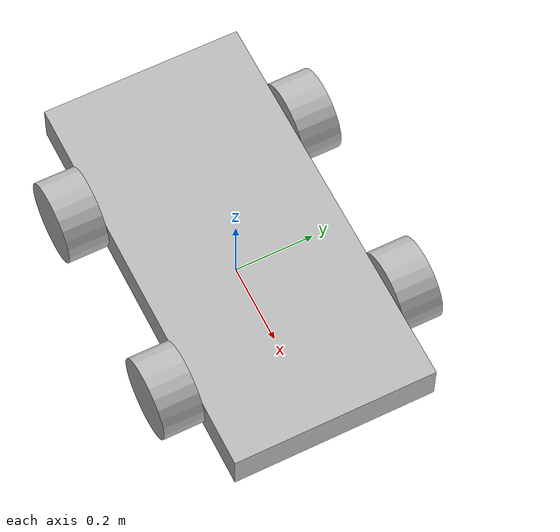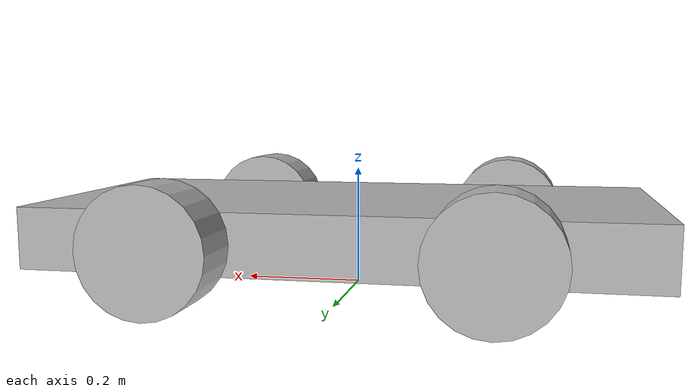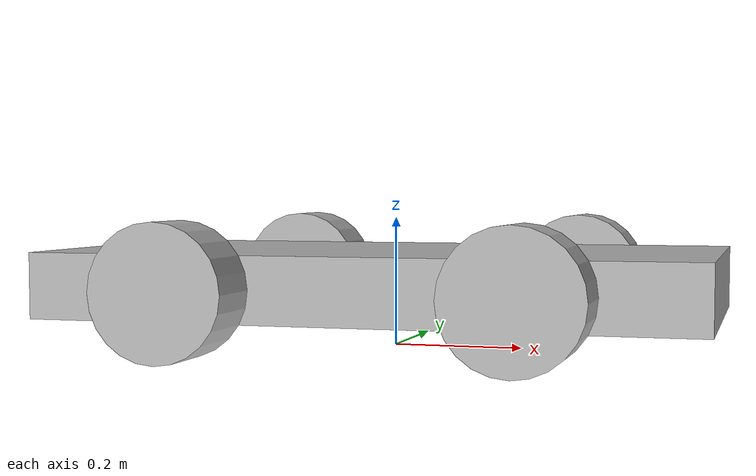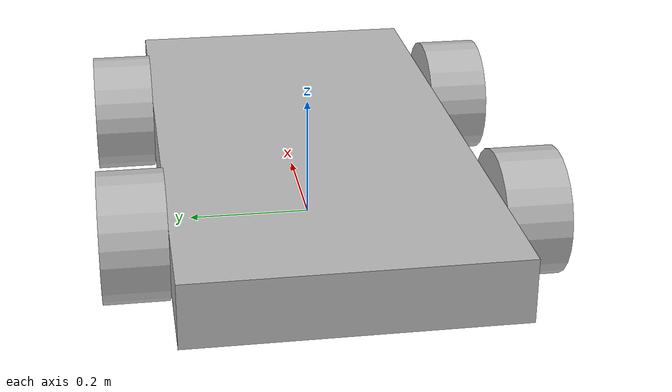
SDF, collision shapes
<?xml version="1.0" ?>
<sdf version="1.6">
  <model name='rover_ackermann'>
    <!--Links-->
   <link name='base_link'>
      <pose relative_to='__model__'>0 0 0.1 0 0 0</pose>
      <inertial>
        <mass>20.0</mass>
        <inertia>
          <ixx>0.4333</ixx>
          <ixy>0.0</ixy>
          <ixz>0.0</ixz>
          <iyy>1.6833</iyy>
          <iyz>0.0</iyz>
          <izz>2.0833</izz>
        </inertia>
      </inertial>
      <visual name='visual'>
        <pose>0 0 -0.05 0 0 0</pose>
        <geometry>
          <mesh>
            <uri>model://rover_ackermann/meshes/rover_ackermann_base.dae</uri>
          </mesh>
        </geometry>
      </visual>
      <collision name='collision'>
        <geometry>
          <box>
            <size>1 0.5 0.1</size>
          </box>
        </geometry>
      </collision>

      <!--Sensors-->
      <sensor name="air_pressure_sensor" type="air_pressure">
        <always_on>1</always_on>
        <update_rate>50</update_rate>
        <air_pressure>
          <!-- Noise modeled after BMP390 -->
          <pressure>
            <noise type="gaussian">
              <mean>0</mean>
              <stddev>3</stddev>
            </noise>
          </pressure>
        </air_pressure>
      </sensor>
      <sensor name="magnetometer_sensor" type="magnetometer">
        <always_on>1</always_on>
        <update_rate>100</update_rate>
        <magnetometer>
          <!-- TODO: update to fix units and coordinate system when we move past Harmonic -->
          <!-- See https://github.com/gazebosim/gz-sim/pull/2460 -->
          <!-- 3mgauss RMS: NOTE: noise is in tesla but sensor reports data in gauss -->
          <!-- Noise modeled after IIS2MDC -->
          <x>
            <noise type="gaussian">
              <stddev>0.0001</stddev>
            </noise>
          </x>
          <y>
            <noise type="gaussian">
              <stddev>0.0001</stddev>
            </noise>
          </y>
          <z>
            <noise type="gaussian">
              <stddev>0.0001</stddev>
            </noise>
          </z>
        </magnetometer>
      </sensor>
      <sensor name="imu_sensor" type="imu">
        <always_on>1</always_on>
        <update_rate>250</update_rate>
        <imu>
          <angular_velocity>
            <!-- Noise modeled after IIM42653 -->
            <!-- 0.05 deg/s converted to rad/s -->
            <x>
              <noise type="gaussian">
                <mean>0.0</mean>
                <stddev>0.0008726646</stddev>
              </noise>
            </x>
            <y>
              <noise type="gaussian">
                <mean>0.0</mean>
                <stddev>0.0008726646</stddev>
              </noise>
            </y>
            <z>
              <noise type="gaussian">
                <mean>0.0</mean>
                <stddev>0.0008726646</stddev>
              </noise>
            </z>
          </angular_velocity>
          <linear_acceleration>
            <!-- Noise modeled after IIM42653 -->
            <!-- X & Y axis: 0.65 mg-rms converted to m/ss -->
            <x>
              <noise type="gaussian">
                <mean>0.0</mean>
                <stddev>0.00637</stddev>
              </noise>
            </x>
            <y>
              <noise type="gaussian">
                <mean>0.0</mean>
                <stddev>0.00637</stddev>
              </noise>
            </y>
            <!-- Z axis: 0.70 mg-rms converted to m/ss-->
            <z>
              <noise type="gaussian">
                <mean>0.0</mean>
                <stddev>0.00686</stddev>
              </noise>
            </z>
          </linear_acceleration>
        </imu>
      </sensor>
      <sensor name="navsat_sensor" type="navsat">
        <always_on>1</always_on>
        <update_rate>30</update_rate>
      </sensor>

      <sensor name="camera" type="camera">
        <pose>0.4 0 0.15 0 0 0</pose>
        <gz_frame_id>vehicle/base_link</gz_frame_id>
        <camera>
          <horizontal_fov>1.047</horizontal_fov>
          <image>
            <width>640</width>
            <height>480</height>
            <format>R8G8B8</format>
          </image>
          <clip>
            <near>0.1</near>
            <far>100</far>
          </clip>
        </camera>
        <always_on>1</always_on>
        <update_rate>30</update_rate>
        <visualize>true</visualize>
      </sensor>

      <sensor name="lidar" type="gpu_lidar">
        <pose>0 0 0.25 0 0 0</pose>
        <gz_frame_id>vehicle</gz_frame_id>
        <update_rate>10</update_rate>
        <lidar>
          <scan>
            <horizontal>
              <samples>1800</samples>
              <resolution>1</resolution>
              <min_angle>-3.14159</min_angle>
              <max_angle>3.14159</max_angle>
            </horizontal>
            <vertical>
              <samples>32</samples>
              <resolution>1</resolution>
              <min_angle>-0.5236</min_angle>
              <max_angle>0.5236</max_angle>
            </vertical>
          </scan>
          <range>
            <min>0.1</min>
            <max>50</max>
            <resolution>0.01</resolution>
          </range>
        </lidar>
        <always_on>1</always_on>
        <visualize>true</visualize>
      </sensor>

      <sensor name="imu" type="imu">
        <pose>0 0 0 0 0 0</pose>
        <gz_frame_id>vehicle</gz_frame_id>
        <update_rate>200</update_rate>
        <always_on>1</always_on>
      </sensor>
    </link>

    <link name='wheel_rear_left_link'>
      <pose relative_to="base_link">-0.25 0.3 0 -1.5707 0 0</pose>
      <inertial>
        <mass>0.5</mass>
        <inertia>
          <ixx>0.000807292</ixx>
          <ixy>0</ixy>
          <ixz>0</ixz>
          <iyy>0.000807292</iyy>
          <iyz>0</iyz>
          <izz>0.00140625</izz>
        </inertia>
      </inertial>
      <visual name='visual'>
        <pose>0 0 0 0 0 0</pose>
        <geometry>
          <mesh>
            <uri>model://rover_ackermann/meshes/rover_ackermann_wheel.dae</uri>
          </mesh>
        </geometry>
      </visual>
      <collision name='collision'>
        <geometry>
          <cylinder>
            <radius>0.1</radius>
            <length>0.1</length>
          </cylinder>
        </geometry>
        <surface>
          <friction>
            <ode>
              <mu>2.0</mu>
              <mu2>2.0</mu2>
              <fdir1>1 0 0</fdir1>
              <slip1>0</slip1>
              <slip2>0</slip2>
            </ode>
          </friction>
        </surface>
      </collision>
    </link>

    <link name='wheel_rear_right_link'>
      <pose relative_to="base_link">-0.25 -0.3 0 -1.5707 0 0</pose>
      <inertial>
        <mass>0.5</mass>
        <inertia>
          <ixx>0.000807292</ixx>
          <ixy>0</ixy>
          <ixz>0</ixz>
          <iyy>0.000807292</iyy>
          <iyz>0</iyz>
          <izz>0.00140625</izz>
        </inertia>
      </inertial>
      <visual name='visual'>
        <pose>0 0 0 0 0 0</pose>
        <geometry>
          <mesh>
            <uri>model://rover_ackermann/meshes/rover_ackermann_wheel.dae</uri>
          </mesh>
        </geometry>
      </visual>
      <collision name='collision'>
        <geometry>
          <cylinder>
            <radius>0.1</radius>
            <length>0.1</length>
          </cylinder>
        </geometry>
        <surface>
          <friction>
            <ode>
              <mu>2.0</mu>
              <mu2>2.0</mu2>
              <fdir1>1 0 0</fdir1>
              <slip1>0</slip1>
              <slip2>0</slip2>
            </ode>
          </friction>
        </surface>
      </collision>
    </link>

    <!-- Joints -->
    <joint name='wheel_rear_left_joint' type='revolute'>
      <pose relative_to='wheel_rear_left_link'/>
      <parent>base_link</parent>
      <child>wheel_rear_left_link</child>
      <axis>
        <xyz expressed_in='__model__'>0 1 0</xyz>
      </axis>
    </joint>

    <joint name='wheel_rear_right_joint' type='revolute'>
      <pose relative_to='wheel_rear_right_link'/>
      <parent>base_link</parent>
      <child>wheel_rear_right_link</child>
      <axis>
        <xyz expressed_in='__model__'>0 1 0</xyz>
      </axis>
    </joint>

    <!-- Front wheels: real driven/steered (originally "Visual Only" in PX4 model) -->

    <link name='wheel_front_left_link'>
      <pose relative_to="base_link">0.25 0.3 0 -1.5707 0 0</pose>
      <inertial>
        <mass>0.5</mass>
        <inertia>
          <ixx>0.000807292</ixx>
          <ixy>0</ixy>
          <ixz>0</ixz>
          <iyy>0.000807292</iyy>
          <iyz>0</iyz>
          <izz>0.00140625</izz>
        </inertia>
      </inertial>
      <visual name='visual'>
        <pose>0 0 0 0 0 0</pose>
        <geometry>
          <mesh>
            <uri>model://rover_ackermann/meshes/rover_ackermann_wheel.dae</uri>
          </mesh>
        </geometry>
      </visual>
      <collision name='collision'>
        <geometry>
          <cylinder>
            <radius>0.1</radius>
            <length>0.1</length>
          </cylinder>
        </geometry>
        <surface>
          <friction>
            <ode>
              <mu>2.0</mu>
              <mu2>2.0</mu2>
              <fdir1>1 0 0</fdir1>
              <slip1>0</slip1>
              <slip2>0</slip2>
            </ode>
          </friction>
        </surface>
      </collision>
    </link>

    <link name='wheel_front_right_link'>
      <pose relative_to="base_link">0.25 -0.3 0 -1.5707 0 0</pose>
      <inertial>
        <mass>0.5</mass>
        <inertia>
          <ixx>0.000807292</ixx>
          <ixy>0</ixy>
          <ixz>0</ixz>
          <iyy>0.000807292</iyy>
          <iyz>0</iyz>
          <izz>0.00140625</izz>
        </inertia>
      </inertial>
      <visual name='visual'>
        <pose>0 0 0 0 0 0</pose>
        <geometry>
          <mesh>
            <uri>model://rover_ackermann/meshes/rover_ackermann_wheel.dae</uri>
          </mesh>
        </geometry>
      </visual>
      <collision name='collision'>
        <geometry>
          <cylinder>
            <radius>0.1</radius>
            <length>0.1</length>
          </cylinder>
        </geometry>
        <surface>
          <friction>
            <ode>
              <mu>2.0</mu>
              <mu2>2.0</mu2>
              <fdir1>1 0 0</fdir1>
              <slip1>0</slip1>
              <slip2>0</slip2>
            </ode>
          </friction>
        </surface>
      </collision>
    </link>

    <link name="wheel_front_left_steering_link">
      <pose relative_to="wheel_front_left_link">0 0 0 0 0 0</pose>
      <inertial>
        <mass>0.005</mass>
        <inertia>
          <ixx>0.0000018</ixx>
          <iyy>0.0000018</iyy>
          <izz>0.0000018</izz>
        </inertia>
      </inertial>
      <velocity_decay/>
      <gravity>0</gravity>
    </link>

    <link name="wheel_front_right_steering_link">
      <pose relative_to="wheel_front_right_link">0 0 0 0 0 0</pose>
      <inertial>
        <mass>0.005</mass>
        <inertia>
          <ixx>0.0000018</ixx>
          <iyy>0.0000018</iyy>
          <izz>0.0000018</izz>
        </inertia>
      </inertial>
      <velocity_decay/>
      <gravity>0</gravity>
    </link>

    <joint name="wheel_front_left_steering_joint" type="revolute">
      <parent>base_link</parent>
      <child>wheel_front_left_steering_link</child>
      <pose relative_to="wheel_front_left_steering_link">0 0 0 0 0 0</pose>
      <axis>
        <xyz>0 0 1</xyz>
        <limit>
          <lower>-0.5236</lower>
          <upper>0.5236</upper>
          <effort>1000000</effort>
          <velocity>10</velocity>
        </limit>
        <use_parent_model_frame>1</use_parent_model_frame>
      </axis>
    </joint>

    <joint name="wheel_front_right_steering_joint" type="revolute">
      <parent>base_link</parent>
      <child>wheel_front_right_steering_link</child>
      <pose relative_to="wheel_front_right_steering_link">0 0 0 0 0 0</pose>
      <axis>
        <xyz>0 0 1</xyz>
        <limit>
          <lower>-0.5236</lower>
          <upper>0.5236</upper>
          <effort>1000000</effort>
          <velocity>10</velocity>
        </limit>
        <use_parent_model_frame>1</use_parent_model_frame>
      </axis>
    </joint>

    <joint name='wheel_front_left_joint' type='revolute'>
      <pose relative_to='wheel_front_left_link'/>
      <parent>wheel_front_left_steering_link</parent>
      <child>wheel_front_left_link</child>
      <axis>
        <xyz expressed_in='__model__'>0 1 0</xyz>
      </axis>
    </joint>

    <joint name='wheel_front_right_joint' type='revolute'>
      <pose relative_to='wheel_front_right_link'/>
      <parent>wheel_front_right_steering_link</parent>
      <child>wheel_front_right_link</child>
      <axis>
        <xyz expressed_in='__model__'>0 1 0</xyz>
      </axis>
    </joint>

    <!-- PX4-specific control plugins removed; control is provided at world level -->
  </model>
</sdf>
